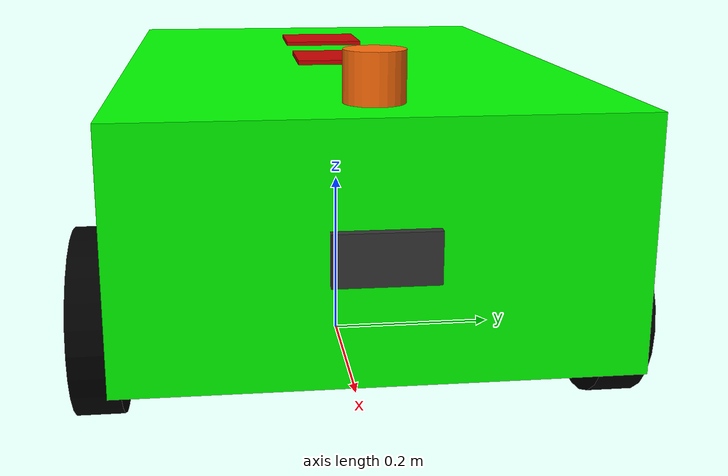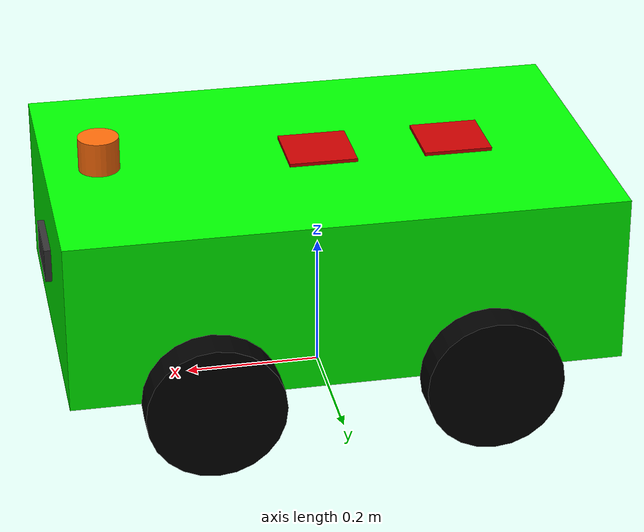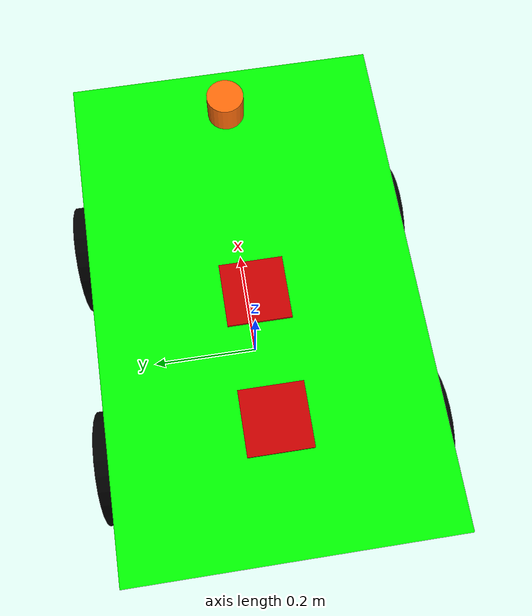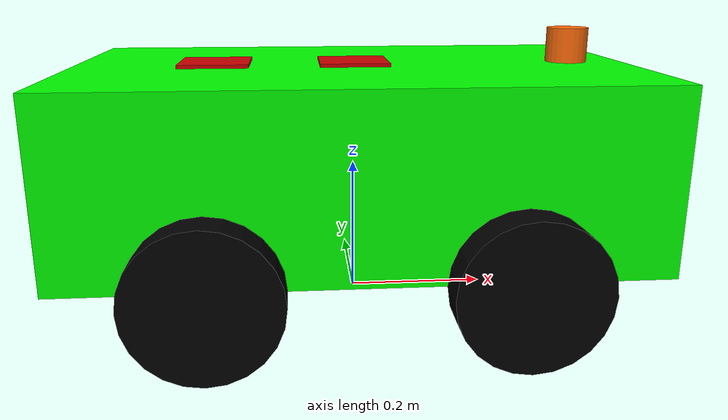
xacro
<?xml version="1.0"?>

<robot xmlns:xacro="http://www.ros.org/wiki/xacro" name="rover_master">

    <xacro:include filename="common.xacro"/>
    <xacro:include filename="main_rover.xacro"/>
    <xacro:include filename="imu.xacro"/>
    <xacro:include filename="robot_gazebo.xacro"/>
    <xacro:include filename="camera.xacro"/>
    <xacro:include filename="lidar.xacro"/>
    <xacro:include filename="gps.xacro"/>
</robot>

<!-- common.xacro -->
<robot xmlns:xacro="http://www.ros.org/wiki/xacro">

      <material name="black">
    <color rgba="0.0 0.0 0.0 1.0"/>
  </material>

  <material name="blue">
    <color rgba="0.0 0.0 0.8 1.0"/>
  </material>

  <material name="green">
    <color rgba="0.0 1.0 0.0 1.0"/>
  </material>

  <material name="grey">
    <color rgba="0.2 0.2 0.2 1.0"/>
  </material>

  <material name="orange">
    <color rgba="${255/255} ${108/255} ${10/255} 1.0"/>
  </material>

  <material name="brown">
    <color rgba="${222/255} ${207/255} ${195/255} 1.0"/>
  </material>

  <material name="red">
    <color rgba="0.8 0.0 0.0 1.0"/>
  </material>

  <material name="white">
    <color rgba="1.0 1.0 1.0 1.0"/>
  </material>

  <xacro:macro name="box_inertia" params="m l w h xyz rpy">
        <inertial>
            <origin xyz="${xyz}" rpy="${rpy}" />
            <mass value="${m}" />
            <inertia ixx="${(m/12) * (h*h + l*l)}" ixy="0" ixz="0"
                     iyy="${(m/12) * (w*w + l*l)}" iyz="0"
                     izz="${(m/12) * (w*w + h*h)}" />
        </inertial>
    </xacro:macro>

    <xacro:macro name="cylinder_inertia" params="m r h xyz rpy">
        <inertial>
            <origin xyz="${xyz}" rpy="${rpy}" />
            <mass value="${m}" />
            <inertia ixx="${(m/12) * (3*r*r + h*h)}" ixy="0" ixz="0"
                     iyy="${(m/12) * (3*r*r + h*h)}" iyz="0"
                     izz="${(m/2) * (r*r)}" />
        </inertial>
    </xacro:macro>

    <xacro:macro name="sphere_inertia" params="m r xyz rpy">
        <inertial>
            <origin xyz="${xyz}" rpy="${rpy}" />
            <mass value="${m}" />
            <inertia ixx="${(2/5) * m * r * r}" ixy="0" ixz="0"
                     iyy="${(2/5) * m * r * r}" iyz="0"
                     izz="${(2/5) * m * r * r}" />
        </inertial>
    </xacro:macro>

</robot>

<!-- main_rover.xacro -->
<robot xmlns:xacro="http://www.ros.org/wiki/xacro">

    <xacro:property name="body_length" value="0.8"/>
    <xacro:property name="body_width" value="0.5"/>
    <xacro:property name="body_height" value="0.25"/>
    <xacro:property name="wheel_radius" value="0.1"/>
    <xacro:property name="wheel_length" value="0.05"/>

    <link name="base_link">
        <visual>
            <geometry>
                <box size="${body_length} ${body_width} ${body_height}"/>
            </geometry>
            <origin xyz="0.0 0.0 ${body_height / 2}" rpy="0.0 0.0 0.0"/>
            <material name="green"/>
        </visual>
        <collision>
            <geometry>
                <box size="${body_length} ${body_width} ${body_height}"/>
            </geometry>
            <origin xyz="0.0 0.0 ${body_height / 2}" rpy="0.0 0.0 0.0"/>
        </collision>
        <xacro:box_inertia m="5.0" l="${2* body_length}" w="${2*body_width}" h="${2*body_height}"
                           xyz="0 0 ${body_height / 2.0}" rpy="0 0 0" />
    </link>

    <xacro:macro name="wheel_link" params="prefix">
        <link name="${prefix}_wheel_link">
            <visual>
                <geometry>
                    <cylinder radius="${wheel_radius}" length="${wheel_length}" />
                </geometry>
                <origin xyz="0 0 0" rpy="${pi / 2.0} 0 0" />
                <material name="black" />
            </visual>
            <collision>
                <geometry>
                    <cylinder radius="${wheel_radius}" length="${wheel_length}" />
                </geometry>
                <origin xyz="0 0 0" rpy="${pi / 2.0} 0 0" />
            </collision>
            <xacro:cylinder_inertia m="1.0" r="${2 * wheel_radius}" h="${2*wheel_length}"
                                    xyz="0 0 0" rpy="${pi / 2.0} 0 0" />
        </link>
    </xacro:macro>

    <xacro:wheel_link prefix="right_top"/>
    <xacro:wheel_link prefix="right_down"/>
    <xacro:wheel_link prefix="left_top"/>
    <xacro:wheel_link prefix="left_down"/>

    <link name="base_footprint"/>

    <joint name="base_base" type="fixed">
        <parent link="base_footprint"/>
        <child link="base_link"/>
        <origin xyz="0.0 0.0 ${wheel_radius}" rpy="0.0 0.0 0.0"/>
    </joint>

    <joint name="base_right_top" type="continuous">
        <parent link="base_link"/>
        <child link="right_top_wheel_link"/>
        <axis xyz="0 1 0"/>
        <origin xyz="${body_length / 4.0} ${-(body_width + wheel_length) / 2.0} 0" rpy="0 0 0"/>
        <limit effort="10000" velocity="1000" />
	    <dynamics damping="1.0" friction="1.0" />
    </joint>

    <joint name="base_left_top" type="continuous">
        <parent link="base_link"/>
        <child link="left_top_wheel_link"/>
        <axis xyz="0 1 0"/>
        <origin xyz="${body_length / 4.0} ${(body_width + wheel_length) / 2.0} 0" rpy="0 0 0"/>
        <limit effort="10000" velocity="1000" />
	    <dynamics damping="1.0" friction="1.0" />
    </joint>

    <joint name="base_right_down" type="continuous">
        <parent link="base_link"/>
        <child link="right_down_wheel_link"/>
        <axis xyz="0 1 0"/>
        <origin xyz="${-body_length / 4.0} ${-(body_width + wheel_length) / 2.0} 0" rpy="0 0 0"/>
        <limit effort="10000" velocity="1000" />
	    <dynamics damping="1.0" friction="1.0" />
    </joint>

    <joint name="base_left_down" type="continuous">
        <parent link="base_link"/>
        <child link="left_down_wheel_link"/>
        <axis xyz="0 1 0"/>
        <origin xyz="${-body_length / 4.0} ${(body_width + wheel_length) / 2.0} 0" rpy="0 0 0"/>
        <limit effort="10000" velocity="1000" />
	    <dynamics damping="1.0" friction="1.0" />
    </joint>

</robot>

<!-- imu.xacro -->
<robot xmlns:xacro="http://www.ros.org/wiki/xacro">
    <xacro:property name="imu_length" value="0.1"/>
    <xacro:property name="imu_width" value="0.1"/>
    <xacro:property name="imu_height" value="0.005"/>

    <link name="imu_link">
        <visual>
            <geometry>
                <box size="${imu_length} ${imu_width} ${imu_height}"/>
            </geometry>
            <origin xyz="0.0 0.0 0.0" rpy="0.0 0.0 0.0"/>
            <material name="red"/>
        </visual>
        <collision>
            <geometry>
                <box size="${imu_length} ${imu_width} ${imu_height}"/>
            </geometry>
            <origin xyz="0.0 0.0 0.0" rpy="0.0 0.0 0.0"/>
        </collision>
        <xacro:box_inertia m="0.05" l="${2* imu_length}" w="${2*imu_width}" h="${2*imu_height}"
                           xyz="0 0 0" rpy="0 0 0" />
    </link>

    <joint name="base_imu" type="fixed">
        <parent link="base_link"/>
        <child link="imu_link"/>
        <origin xyz="0.0 0.0 ${body_height + imu_height/2}" rpy="0.0 0.0 0.0"/>
    </joint>

    <gazebo reference="imu_link">
        <material>
            Gazebo/Red
        </material>
        <gravity>true</gravity>
        <sensor name="imu_sensor" type="imu">
          <always_on>true</always_on>
          <update_rate>50</update_rate>
          <visualize>true</visualize>
          <topic>imu_topic</topic>
          <plugin filename="libgazebo_ros_imu_sensor.so" name="imu_publisher">
            <ros>
                <!-- publish to /imu/data -->
                <remapping>~/out:=imu_data</remapping>
            </ros>
            <topicName>imu</topicName>
            <bodyName>imu_link</bodyName>
            <updateRateHZ>10.0</updateRateHZ>
            <gaussianNoise>0.0</gaussianNoise>
            <xyzOffset>0 0 0</xyzOffset>
            <rpyOffset>0 0 0</rpyOffset>
            <frameName>imu_link</frameName>
            <initialOrientationAsReference>false</initialOrientationAsReference>
          </plugin>
          <pose>0 0 0 0 0 0</pose>
        </sensor>
    </gazebo>

</robot>

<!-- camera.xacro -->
<robot xmlns:xacro="http://www.ros.org/wiki/xacro">

    <xacro:property name="camera_length" value="0.01" />
    <xacro:property name="camera_width" value="0.1" />
    <xacro:property name="camera_height" value="0.05" />

    <link name="camera_link">
        <visual>
            <geometry>
                <box size="${camera_length} ${camera_width} ${camera_height}" />
            </geometry>
            <material name="grey" />
        </visual>
        <collision>
            <geometry>
                <box size="${camera_length} ${camera_width} ${camera_height}" />
            </geometry>
        </collision>
        <xacro:box_inertia m="0.1" l="${camera_length}" w="${camera_width}" h="${camera_height}"
                           xyz="0 0 0" rpy="0 0 0" />
    </link>

    <joint name="base_camera_joint" type="fixed">
        <parent link="base_link" />
        <child link="camera_link" />
        <origin xyz="${(body_length + camera_length) / 2.0} 0 ${body_height / 2.0}" rpy="0 0 0" />
    </joint>

    <link name="camera_link_optical">
    </link>

    <joint name="camera_optical_joint" type="fixed">
        <!-- these values have to be these values otherwise the gazebo camera
            image won't be aligned properly with the frame it is supposedly
            originating from -->
        <origin xyz="0 0 0" rpy="${-pi/2} 0 ${-pi/2}"/>
        <parent link="camera_link"/>
        <child link="camera_link_optical"/>
    </joint>

    <gazebo reference="camera_link">
        <material>Gazebo/Grey</material>
        <sensor name="camera_sensor" type="camera">
            <pose>0 0 0 0 0 0</pose>
            <visualize>true</visualize>
            <update_rate>10.0</update_rate>
            <plugin name="camera_controller" filename="libgazebo_ros_camera.so">
                <frame_name>camera_link_optical</frame_name>
            </plugin>
        </sensor>
    </gazebo>

</robot>

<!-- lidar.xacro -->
<robot xmlns:xacro="http://www.ros.org/wiki/xacro">
    <xacro:property name="lidar_radius" value="0.03"/>
    <xacro:property name="lidar_length" value="0.05"/>

    <link name="base_scan">
        <visual>
            <geometry>
                <cylinder radius="${lidar_radius}" length="${lidar_length}"/>
            </geometry>
            <material name="orange"/>
        </visual>
        <origin xyz="0.0 0.0 0.0" rpy="0.0 0.0 0.0"/>
        <collision>
            <geometry>
                <cylinder radius="${lidar_radius}" length="${lidar_length}"/>
            </geometry>
        </collision>
        <xacro:cylinder_inertia m="0.3" r="${2 * lidar_radius}" h="${2*lidar_length}"
                                    xyz="0 0 0" rpy="0 0 0" />
    </link>

    <joint name="base_lidar" type="fixed">
        <parent link="base_link"/>
        <child link="base_scan"/>
        <origin xyz="${0.8*body_length/2} 0.0 ${body_height + lidar_length/2}" rpy="0.0 0.0 0.0"/>
    </joint>

    <gazebo reference="base_scan">
        <material>
            Gazebo/Orange
        </material>
        <sensor name="laser" type="ray">
            <pose> 0 0 0 0 0 0 </pose>
            <visualize>true</visualize>
            <update_rate>10</update_rate>
            <ray>
                <scan>
                    <horizontal>
                        <samples>360</samples>
                        <min_angle>-3.14</min_angle>
                        <max_angle>3.14</max_angle>
                    </horizontal>
                </scan>
                <range>
                    <min>0.3</min>
                    <max>12</max>
                </range>
            </ray>
            <plugin name="laser_controller" filename="libgazebo_ros_ray_sensor.so">
                <ros>
                    <argument>~/out:=scan</argument>
                </ros>
                <output_type>sensor_msgs/LaserScan</output_type>
                <frame_name>base_scan</frame_name>
            </plugin>
        </sensor>
    </gazebo>

</robot>

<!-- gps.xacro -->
<robot xmlns:xacro="http://www.ros.org/wiki/xacro">
    <xacro:property name="gps_length" value="0.1"/>
    <xacro:property name="gps_width" value="0.1"/>
    <xacro:property name="gps_height" value="0.005"/>

    <link name="gps_link">
        <visual>
            <geometry>
                <box size="${gps_length} ${gps_width} ${gps_height}"/>
            </geometry>
            <origin xyz="0.0 0.0 0.0" rpy="0.0 0.0 0.0"/>
            <material name="red"/>
        </visual>
        <collision>
            <geometry>
                <box size="${gps_length} ${gps_width} ${gps_height}"/>
            </geometry>
            <origin xyz="0.0 0.0 0.0" rpy="0.0 0.0 0.0"/>
        </collision>
        <xacro:box_inertia m="0.05" l="${2* gps_length}" w="${2*gps_width}" h="${2*gps_height}"
                           xyz="0 0 0" rpy="0 0 0" />
    </link>

    <joint name="base_gps" type="fixed">
        <parent link="base_link"/>
        <child link="gps_link"/>
        <origin xyz="${-2 * imu_length} 0.0 ${body_height + gps_height/2}" rpy="0.0 0.0 0.0"/>
    </joint>

    <gazebo reference="gps_link">
        <material>
            Gazebo/Red
        </material>
        <gravity>true</gravity>
        <sensor name="my_gps" type="gps">
            <!-- ensure the sensor is active (required) -->
            <always_on>true</always_on>
            <update_rate>30</update_rate>
            <plugin name="my_gps_plugin" filename="libgazebo_ros_gps_sensor.so">
              <ros>
                <!-- publish to /gps/data -->
                <remapping>~/out:=gps_data</remapping>
                <remapping>~/vel:=gps_velocity</remapping>
              </ros>
            </plugin>
          </sensor>
    </gazebo>

</robot>
